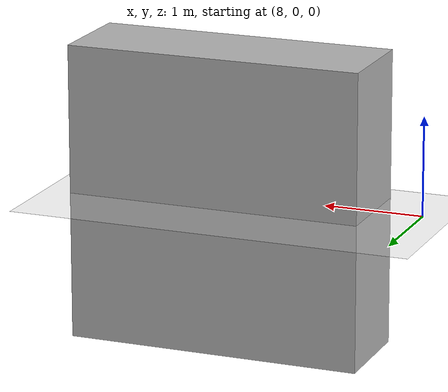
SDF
<sdf version="1.4">
  <world name="default">

    <scene>
      <ambient>0.4 0.4 0.4 1</ambient>
      <background>0.7 0.7 0.7 1</background>
      <shadows>true</shadows>
    </scene>

    <!-- A global light source -->
    <include>
      <uri>model://sun</uri>
    </include>

    <!-- A ground plane -->
    <include>
      <uri>model://ground_plane</uri>
    </include>

    <physics type="ode">
      <real_time_update_rate>1000.0</real_time_update_rate>
      <max_step_size>0.001</max_step_size>
      <real_time_factor>1</real_time_factor>
      <ode>
        <solver>
          <type>quick</type>
          <iters>150</iters>
          <precon_iters>0</precon_iters>
          <sor>1.400000</sor>
          <use_dynamic_moi_rescaling>1</use_dynamic_moi_rescaling>
        </solver>
        <constraints>
          <cfm>0.00001</cfm>
          <erp>0.2</erp>
          <contact_max_correcting_vel>2000.000000</contact_max_correcting_vel>
          <contact_surface_layer>0.01000</contact_surface_layer>
        </constraints>
      </ode>
    </physics>
    <model name="brick_box_3x1x3">
      <static>1</static>
      <link name="chassis">

        <pose frame="">10 0 0 0 0 0</pose>
        <collision name="collision">
          <geometry>
            <box>
              <size>3 1 1.5</size>
            </box>
          </geometry>
          <max_contacts>10</max_contacts>
          <surface>
            <bounce />
            <friction>
              <ode />
            </friction>
            <contact>
              <ode />
            </contact>
          </surface>
        </collision>
        <visual name="visual">
          <geometry>
            <mesh>
              <uri>model://brick_box_3x1x3/meshes/simple_box.dae</uri>
              <scale>3 1 3</scale>
            </mesh>
          </geometry>
          <material>
            <script>
              <uri>model://brick_box_3x1x3/materials/scripts</uri>
              <uri>model://brick_box_3x1x3/materials/textures</uri>
              <name>BrickBox/Diffuse</name>
            </script>
          </material>
        </visual>
        <velocity_decay>
          <linear>0</linear>
          <angular>0</angular>
        </velocity_decay>
        <self_collide>0</self_collide>
        <kinematic>0</kinematic>
        <gravity>1</gravity>
      </link>
    </model>
  </world>

</sdf>
